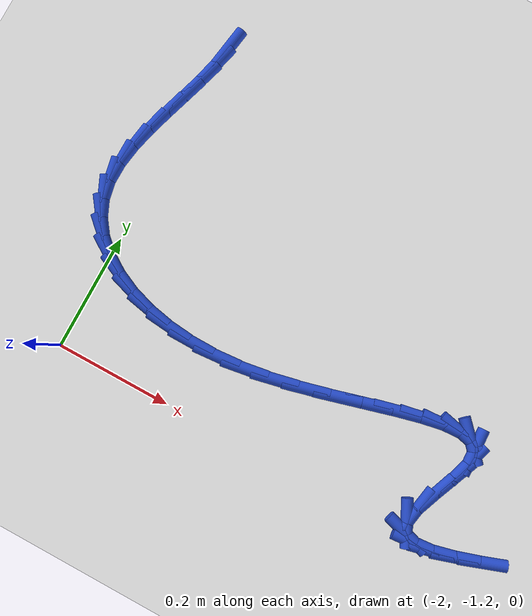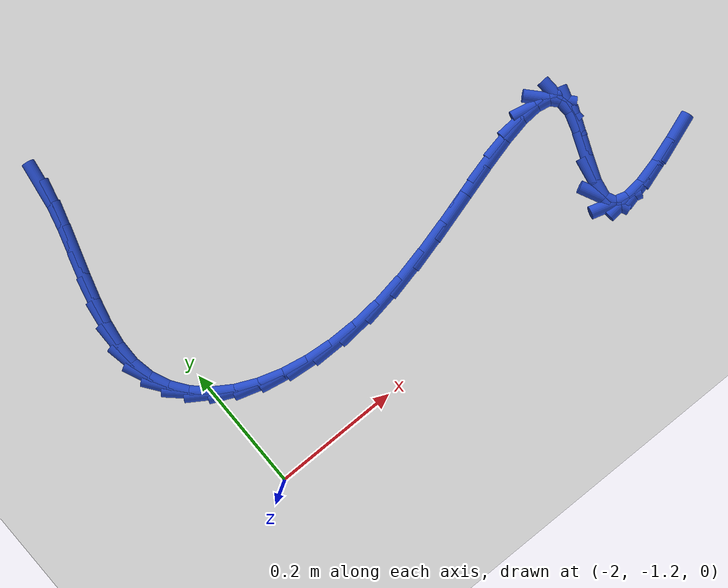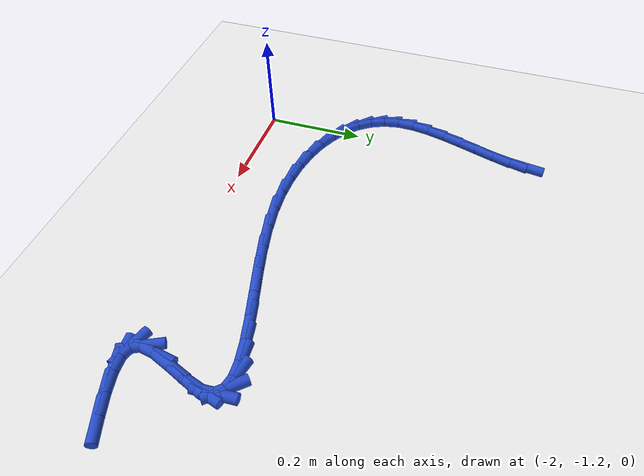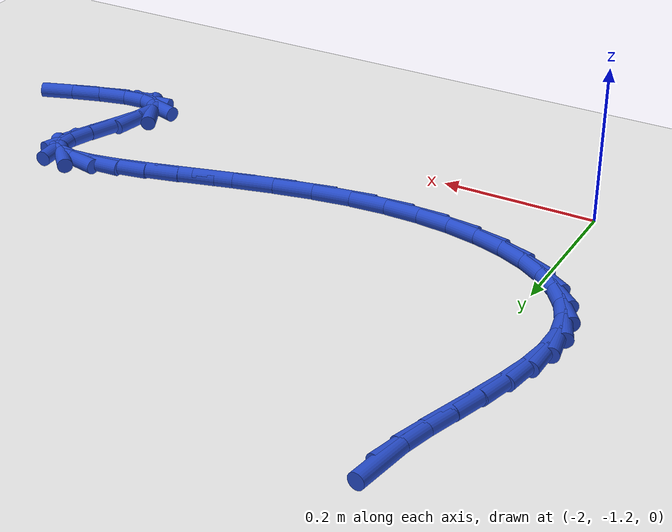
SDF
<sdf version="1.6">
 <world name="default">
  <model name="ground_plane">
   <static>1</static>
   <link name="link">
    <collision name="collision">
     <geometry><plane><normal>0 0 1</normal><size>100 100</size></plane></geometry>
     <surface><friction><ode><mu>100</mu><mu2>50</mu2></ode></friction></surface>
    </collision>
    <visual name="visual">
     <cast_shadows>0</cast_shadows>
     <geometry><plane><normal>0 0 1</normal><size>100 100</size></plane></geometry>
     <material>
      <script><uri>file://media/materials/scripts/gazebo.material</uri><name>Gazebo/WhiteGlow</name></script>
     </material>
    </visual>
   </link>
  </model>
  <model name="line">
   <link name="link_141">
    <pose>-1.998408107700239 -0.6361736279667485 0.01 0 1.57 1.4194632325536873</pose>
    <collision name="collision">
     <geometry><cylinder><radius>0.01</radius><length>0.08</length></cylinder></geometry>
    </collision>
    <visual name="visual">
     <material>
      <script><name>Gazebo/Blue</name><uri>file://media/materials/scripts/gazebo.material</uri></script>
     </material>
     <geometry><cylinder><radius>0.01</radius><length>0.08</length></cylinder></geometry>
    </visual>
   </link>
   <link name="link_142">
    <pose>-2.003416993031654 -0.6690189848262343 0.01 0 1.57 1.3237993009965494</pose>
    <collision name="collision">
     <geometry><cylinder><radius>0.01</radius><length>0.08</length></cylinder></geometry>
    </collision>
    <visual name="visual">
     <material>
      <script><name>Gazebo/Blue</name><uri>file://media/materials/scripts/gazebo.material</uri></script>
     </material>
     <geometry><cylinder><radius>0.01</radius><length>0.08</length></cylinder></geometry>
    </visual>
   </link>
   <link name="link_143">
    <pose>-2.0122755596257833 -0.7041517285194999 0.01 0 1.57 1.2746604182572225</pose>
    <collision name="collision">
     <geometry><cylinder><radius>0.01</radius><length>0.08</length></cylinder></geometry>
    </collision>
    <visual name="visual">
     <material>
      <script><name>Gazebo/Blue</name><uri>file://media/materials/scripts/gazebo.material</uri></script>
     </material>
     <geometry><cylinder><radius>0.01</radius><length>0.08</length></cylinder></geometry>
    </visual>
   </link>
   <link name="link_144">
    <pose>-2.023477470284653 -0.7408663711348178 0.01 0 1.57 1.2608573895504744</pose>
    <collision name="collision">
     <geometry><cylinder><radius>0.01</radius><length>0.08</length></cylinder></geometry>
    </collision>
    <visual name="visual">
     <material>
      <script><name>Gazebo/Blue</name><uri>file://media/materials/scripts/gazebo.material</uri></script>
     </material>
     <geometry><cylinder><radius>0.01</radius><length>0.08</length></cylinder></geometry>
    </visual>
   </link>
   <link name="link_145">
    <pose>-2.0355163878102913 -0.77845742476046 0.01 0 1.57 1.2783438722948446</pose>
    <collision name="collision">
     <geometry><cylinder><radius>0.01</radius><length>0.08</length></cylinder></geometry>
    </collision>
    <visual name="visual">
     <material>
      <script><name>Gazebo/Blue</name><uri>file://media/materials/scripts/gazebo.material</uri></script>
     </material>
     <geometry><cylinder><radius>0.01</radius><length>0.08</length></cylinder></geometry>
    </visual>
   </link>
   <link name="link_146">
    <pose>-2.0468859750047237 -0.8162194014846984 0.01 0 1.57 1.3286748542332683</pose>
    <collision name="collision">
     <geometry><cylinder><radius>0.01</radius><length>0.08</length></cylinder></geometry>
    </collision>
    <visual name="visual">
     <material>
      <script><name>Gazebo/Blue</name><uri>file://media/materials/scripts/gazebo.material</uri></script>
     </material>
     <geometry><cylinder><radius>0.01</radius><length>0.08</length></cylinder></geometry>
    </visual>
   </link>
   <link name="link_147">
    <pose>-2.0560798946699768 -0.8534468133958059 0.01 0 1.57 1.4188148855984966</pose>
    <collision name="collision">
     <geometry><cylinder><radius>0.01</radius><length>0.08</length></cylinder></geometry>
    </collision>
    <visual name="visual">
     <material>
      <script><name>Gazebo/Blue</name><uri>file://media/materials/scripts/gazebo.material</uri></script>
     </material>
     <geometry><cylinder><radius>0.01</radius><length>0.08</length></cylinder></geometry>
    </visual>
   </link>
   <link name="link_148">
    <pose>-2.061591809608077 -0.8894341725820526 0.01 0 1.57 1.5612914506586824</pose>
    <collision name="collision">
     <geometry><cylinder><radius>0.01</radius><length>0.08</length></cylinder></geometry>
    </collision>
    <visual name="visual">
     <material>
      <script><name>Gazebo/Blue</name><uri>file://media/materials/scripts/gazebo.material</uri></script>
     </material>
     <geometry><cylinder><radius>0.01</radius><length>0.08</length></cylinder></geometry>
    </visual>
   </link>
   <link name="link_149">
    <pose>-2.0619153826210517 -0.923475991131712 0.01 0 1.57 -1.37750091442947</pose>
    <collision name="collision">
     <geometry><cylinder><radius>0.01</radius><length>0.08</length></cylinder></geometry>
    </collision>
    <visual name="visual">
     <material>
      <script><name>Gazebo/Blue</name><uri>file://media/materials/scripts/gazebo.material</uri></script>
     </material>
     <geometry><cylinder><radius>0.01</radius><length>0.08</length></cylinder></geometry>
    </visual>
   </link>
   <link name="link_150">
    <pose>-2.055759117964963 -0.9549273355125546 0.01 0 1.57 -1.1544322432641454</pose>
    <collision name="collision">
     <geometry><cylinder><radius>0.01</radius><length>0.08</length></cylinder></geometry>
    </collision>
    <visual name="visual">
     <material>
      <script><name>Gazebo/Blue</name><uri>file://media/materials/scripts/gazebo.material</uri></script>
     </material>
     <geometry><cylinder><radius>0.01</radius><length>0.08</length></cylinder></geometry>
    </visual>
   </link>
   <link name="link_151">
    <pose>-2.043120807148904 -0.9835066657001553 0.01 0 1.57 -0.9406141104343997</pose>
    <collision name="collision">
     <geometry><cylinder><radius>0.01</radius><length>0.08</length></cylinder></geometry>
    </collision>
    <visual name="visual">
     <material>
      <script><name>Gazebo/Blue</name><uri>file://media/materials/scripts/gazebo.material</uri></script>
     </material>
     <geometry><cylinder><radius>0.01</radius><length>0.08</length></cylinder></geometry>
    </visual>
   </link>
   <link name="link_152">
    <pose>-2.024476981258225 -1.0090673773514356 0.01 0 1.57 -0.7472720955097159</pose>
    <collision name="collision">
     <geometry><cylinder><radius>0.01</radius><length>0.08</length></cylinder></geometry>
    </collision>
    <visual name="visual">
     <material>
      <script><name>Gazebo/Blue</name><uri>file://media/materials/scripts/gazebo.material</uri></script>
     </material>
     <geometry><cylinder><radius>0.01</radius><length>0.08</length></cylinder></geometry>
    </visual>
   </link>
   <link name="link_153">
    <pose>-2.0003049639254553 -1.031463089507593 0.01 0 1.57 -0.5785241795873693</pose>
    <collision name="collision">
     <geometry><cylinder><radius>0.01</radius><length>0.08</length></cylinder></geometry>
    </collision>
    <visual name="visual">
     <material>
      <script><name>Gazebo/Blue</name><uri>file://media/materials/scripts/gazebo.material</uri></script>
     </material>
     <geometry><cylinder><radius>0.01</radius><length>0.08</length></cylinder></geometry>
    </visual>
   </link>
   <link name="link_154">
    <pose>-1.9710820787831262 -1.0505474212098254 0.01 0 1.57 -0.4330958806955946</pose>
    <collision name="collision">
     <geometry><cylinder><radius>0.01</radius><length>0.08</length></cylinder></geometry>
    </collision>
    <visual name="visual">
     <material>
      <script><name>Gazebo/Blue</name><uri>file://media/materials/scripts/gazebo.material</uri></script>
     </material>
     <geometry><cylinder><radius>0.01</radius><length>0.08</length></cylinder></geometry>
    </visual>
   </link>
   <link name="link_155">
    <pose>-1.9372856494637676 -1.066173991499331 0.01 0 1.57 -0.3072300107531782</pose>
    <collision name="collision">
     <geometry><cylinder><radius>0.01</radius><length>0.08</length></cylinder></geometry>
    </collision>
    <visual name="visual">
     <material>
      <script><name>Gazebo/Blue</name><uri>file://media/materials/scripts/gazebo.material</uri></script>
     </material>
     <geometry><cylinder><radius>0.01</radius><length>0.08</length></cylinder></geometry>
    </visual>
   </link>
   <link name="link_156">
    <pose>-1.8993929995999128 -1.0781964194173073 0.01 0 1.57 -0.19669119035951352</pose>
    <collision name="collision">
     <geometry><cylinder><radius>0.01</radius><length>0.08</length></cylinder></geometry>
    </collision>
    <visual name="visual">
     <material>
      <script><name>Gazebo/Blue</name><uri>file://media/materials/scripts/gazebo.material</uri></script>
     </material>
     <geometry><cylinder><radius>0.01</radius><length>0.08</length></cylinder></geometry>
    </visual>
   </link>
   <link name="link_157">
    <pose>-1.8578814528240915 -1.0864683240049526 0.01 0 1.57 -0.09766576173297506</pose>
    <collision name="collision">
     <geometry><cylinder><radius>0.01</radius><length>0.08</length></cylinder></geometry>
    </collision>
    <visual name="visual">
     <material>
      <script><name>Gazebo/Blue</name><uri>file://media/materials/scripts/gazebo.material</uri></script>
     </material>
     <geometry><cylinder><radius>0.01</radius><length>0.08</length></cylinder></geometry>
    </visual>
   </link>
   <link name="link_158">
    <pose>-1.8132283327688343 -1.090843324303465 0.01 0 1.57 -0.007010313943005772</pose>
    <collision name="collision">
     <geometry><cylinder><radius>0.01</radius><length>0.08</length></cylinder></geometry>
    </collision>
    <visual name="visual">
     <material>
      <script><name>Gazebo/Blue</name><uri>file://media/materials/scripts/gazebo.material</uri></script>
     </material>
     <geometry><cylinder><radius>0.01</radius><length>0.08</length></cylinder></geometry>
    </visual>
   </link>
   <link name="link_159">
    <pose>-1.7659109630666734 -1.0911750393540425 0.01 0 1.57 0.07777444805898516</pose>
    <collision name="collision">
     <geometry><cylinder><radius>0.01</radius><length>0.08</length></cylinder></geometry>
    </collision>
    <visual name="visual">
     <material>
      <script><name>Gazebo/Blue</name><uri>file://media/materials/scripts/gazebo.material</uri></script>
     </material>
     <geometry><cylinder><radius>0.01</radius><length>0.08</length></cylinder></geometry>
    </visual>
   </link>
   <link name="link_160">
    <pose>-1.7164066673501386 -1.0873170881978829 0.01 0 1.57 0.15617996272577872</pose>
    <collision name="collision">
     <geometry><cylinder><radius>0.01</radius><length>0.08</length></cylinder></geometry>
    </collision>
    <visual name="visual">
     <material>
      <script><name>Gazebo/Blue</name><uri>file://media/materials/scripts/gazebo.material</uri></script>
     </material>
     <geometry><cylinder><radius>0.01</radius><length>0.08</length></cylinder></geometry>
    </visual>
   </link>
   <link name="link_161">
    <pose>-1.6652636193483126 -1.0792639845566872 0.01 0 1.57 0.2146367477468952</pose>
    <collision name="collision">
     <geometry><cylinder><radius>0.01</radius><length>0.08</length></cylinder></geometry>
    </collision>
    <visual name="visual">
     <material>
      <script><name>Gazebo/Blue</name><uri>file://media/materials/scripts/gazebo.material</uri></script>
     </material>
     <geometry><cylinder><radius>0.01</radius><length>0.08</length></cylinder></geometry>
    </visual>
   </link>
   <link name="link_162">
    <pose>-1.613519698334832 -1.0679840856555534 0.01 0 1.57 0.2514497727113362</pose>
    <collision name="collision">
     <geometry><cylinder><radius>0.01</radius><length>0.08</length></cylinder></geometry>
    </collision>
    <visual name="visual">
     <material>
      <script><name>Gazebo/Blue</name><uri>file://media/materials/scripts/gazebo.material</uri></script>
     </material>
     <geometry><cylinder><radius>0.01</radius><length>0.08</length></cylinder></geometry>
    </visual>
   </link>
   <link name="link_163">
    <pose>-1.562419666494411 -1.0548571624377818 0.01 0 1.57 0.26949539332802847</pose>
    <collision name="collision">
     <geometry><cylinder><radius>0.01</radius><length>0.08</length></cylinder></geometry>
    </collision>
    <visual name="visual">
     <material>
      <script><name>Gazebo/Blue</name><uri>file://media/materials/scripts/gazebo.material</uri></script>
     </material>
     <geometry><cylinder><radius>0.01</radius><length>0.08</length></cylinder></geometry>
    </visual>
   </link>
   <link name="link_164">
    <pose>-1.5132090202748156 -1.0412644460247678 0.01 0 1.57 0.26849621662102297</pose>
    <collision name="collision">
     <geometry><cylinder><radius>0.01</radius><length>0.08</length></cylinder></geometry>
    </collision>
    <visual name="visual">
     <material>
      <script><name>Gazebo/Blue</name><uri>file://media/materials/scripts/gazebo.material</uri></script>
     </material>
     <geometry><cylinder><radius>0.01</radius><length>0.08</length></cylinder></geometry>
    </visual>
   </link>
   <link name="link_165">
    <pose>-1.4671332561238168 -1.0285871675379086 0.01 0 1.57 0.2440024511056861</pose>
    <collision name="collision">
     <geometry><cylinder><radius>0.01</radius><length>0.08</length></cylinder></geometry>
    </collision>
    <visual name="visual">
     <material>
      <script><name>Gazebo/Blue</name><uri>file://media/materials/scripts/gazebo.material</uri></script>
     </material>
     <geometry><cylinder><radius>0.01</radius><length>0.08</length></cylinder></geometry>
    </visual>
   </link>
   <link name="link_166">
    <pose>-1.425437870489182 -1.0182065580985993 0.01 0 1.57 0.183731824676864</pose>
    <collision name="collision">
     <geometry><cylinder><radius>0.01</radius><length>0.08</length></cylinder></geometry>
    </collision>
    <visual name="visual">
     <material>
      <script><name>Gazebo/Blue</name><uri>file://media/materials/scripts/gazebo.material</uri></script>
     </material>
     <geometry><cylinder><radius>0.01</radius><length>0.08</length></cylinder></geometry>
    </visual>
   </link>
   <link name="link_167">
    <pose>-1.3893683598186808 -1.0115038488282364 0.01 0 1.57 0.05623116253719144</pose>
    <collision name="collision">
     <geometry><cylinder><radius>0.01</radius><length>0.08</length></cylinder></geometry>
    </collision>
    <visual name="visual">
     <material>
      <script><name>Gazebo/Blue</name><uri>file://media/materials/scripts/gazebo.material</uri></script>
     </material>
     <geometry><cylinder><radius>0.01</radius><length>0.08</length></cylinder></geometry>
    </visual>
   </link>
   <link name="link_168">
    <pose>-1.360170220560083 -1.0098602708482165 0.01 0 1.57 -0.22372856420444484</pose>
    <collision name="collision">
     <geometry><cylinder><radius>0.01</radius><length>0.08</length></cylinder></geometry>
    </collision>
    <visual name="visual">
     <material>
      <script><name>Gazebo/Blue</name><uri>file://media/materials/scripts/gazebo.material</uri></script>
     </material>
     <geometry><cylinder><radius>0.01</radius><length>0.08</length></cylinder></geometry>
    </visual>
   </link>
   <link name="link_169">
    <pose>-1.3390889491611568 -1.0146570552799354 0.01 0 1.57 -0.8223399039037487</pose>
    <collision name="collision">
     <geometry><cylinder><radius>0.01</radius><length>0.08</length></cylinder></geometry>
    </collision>
    <visual name="visual">
     <material>
      <script><name>Gazebo/Blue</name><uri>file://media/materials/scripts/gazebo.material</uri></script>
     </material>
     <geometry><cylinder><radius>0.01</radius><length>0.08</length></cylinder></geometry>
    </visual>
   </link>
   <link name="link_170">
    <pose>-1.3273700420696717 -1.0272754332447895 0.01 0 1.57 -1.5199243495201655</pose>
    <collision name="collision">
     <geometry><cylinder><radius>0.01</radius><length>0.08</length></cylinder></geometry>
    </collision>
    <visual name="visual">
     <material>
      <script><name>Gazebo/Blue</name><uri>file://media/materials/scripts/gazebo.material</uri></script>
     </material>
     <geometry><cylinder><radius>0.01</radius><length>0.08</length></cylinder></geometry>
    </visual>
   </link>
   <link name="link_171">
    <pose>-1.3262589957333974 -1.0490966358641751 0.01 0 1.57 1.2731330230850266</pose>
    <collision name="collision">
     <geometry><cylinder><radius>0.01</radius><length>0.08</length></cylinder></geometry>
    </collision>
    <visual name="visual">
     <material>
      <script><name>Gazebo/Blue</name><uri>file://media/materials/scripts/gazebo.material</uri></script>
     </material>
     <geometry><cylinder><radius>0.01</radius><length>0.08</length></cylinder></geometry>
    </visual>
   </link>
   <link name="link_172">
    <pose>-1.3358823859786981 -1.0804658880764815 0.01 0 1.57 1.1776292897777563</pose>
    <collision name="collision">
     <geometry><cylinder><radius>0.01</radius><length>0.08</length></cylinder></geometry>
    </collision>
    <visual name="visual">
     <material>
      <script><name>Gazebo/Blue</name><uri>file://media/materials/scripts/gazebo.material</uri></script>
     </material>
     <geometry><cylinder><radius>0.01</radius><length>0.08</length></cylinder></geometry>
    </visual>
   </link>
   <link name="link_173">
    <pose>-1.350895316651382 -1.1166623907487139 0.01 0 1.57 1.203128393020451</pose>
    <collision name="collision">
     <geometry><cylinder><radius>0.01</radius><length>0.08</length></cylinder></geometry>
    </collision>
    <visual name="visual">
     <material>
      <script><name>Gazebo/Blue</name><uri>file://media/materials/scripts/gazebo.material</uri></script>
     </material>
     <geometry><cylinder><radius>0.01</radius><length>0.08</length></cylinder></geometry>
    </visual>
   </link>
   <link name="link_174">
    <pose>-1.364283056090072 -1.1514192476638168 0.01 0 1.57 1.3961051197324468</pose>
    <collision name="collision">
     <geometry><cylinder><radius>0.01</radius><length>0.08</length></cylinder></geometry>
    </collision>
    <visual name="visual">
     <material>
      <script><name>Gazebo/Blue</name><uri>file://media/materials/scripts/gazebo.material</uri></script>
     </material>
     <geometry><cylinder><radius>0.01</radius><length>0.08</length></cylinder></geometry>
    </visual>
   </link>
   <link name="link_175">
    <pose>-1.3690621984328657 -1.1784980467108623 0.01 0 1.57 -1.1097661804679573</pose>
    <collision name="collision">
     <geometry><cylinder><radius>0.01</radius><length>0.08</length></cylinder></geometry>
    </collision>
    <visual name="visual">
     <material>
      <script><name>Gazebo/Blue</name><uri>file://media/materials/scripts/gazebo.material</uri></script>
     </material>
     <geometry><cylinder><radius>0.01</radius><length>0.08</length></cylinder></geometry>
    </visual>
   </link>
   <link name="link_176">
    <pose>-1.3611937986654388 -1.1943383646064838 0.01 0 1.57 -0.2949889833550326</pose>
    <collision name="collision">
     <geometry><cylinder><radius>0.01</radius><length>0.08</length></cylinder></geometry>
    </collision>
    <visual name="visual">
     <material>
      <script><name>Gazebo/Blue</name><uri>file://media/materials/scripts/gazebo.material</uri></script>
     </material>
     <geometry><cylinder><radius>0.01</radius><length>0.08</length></cylinder></geometry>
    </visual>
   </link>
   <link name="link_177">
    <pose>-1.3419297730501625 -1.200191819429258 0.01 0 1.57 0.08227966260887404</pose>
    <collision name="collision">
     <geometry><cylinder><radius>0.01</radius><length>0.08</length></cylinder></geometry>
    </collision>
    <visual name="visual">
     <material>
      <script><name>Gazebo/Blue</name><uri>file://media/materials/scripts/gazebo.material</uri></script>
     </material>
     <geometry><cylinder><radius>0.01</radius><length>0.08</length></cylinder></geometry>
    </visual>
   </link>
   <link name="link_178">
    <pose>-1.3130741990596875 -1.1978122201948065 0.01 0 1.57 0.2372090206347851</pose>
    <collision name="collision">
     <geometry><cylinder><radius>0.01</radius><length>0.08</length></cylinder></geometry>
    </collision>
    <visual name="visual">
     <material>
      <script><name>Gazebo/Blue</name><uri>file://media/materials/scripts/gazebo.material</uri></script>
     </material>
     <geometry><cylinder><radius>0.01</radius><length>0.08</length></cylinder></geometry>
    </visual>
   </link>
   <link name="link_179">
    <pose>-1.2764311541666633 -1.1889533759187525 0.01 0 1.57 0.3085069501089626</pose>
    <collision name="collision">
     <geometry><cylinder><radius>0.01</radius><length>0.08</length></cylinder></geometry>
    </collision>
    <visual name="visual">
     <material>
      <script><name>Gazebo/Blue</name><uri>file://media/materials/scripts/gazebo.material</uri></script>
     </material>
     <geometry><cylinder><radius>0.01</radius><length>0.08</length></cylinder></geometry>
    </visual>
   </link>
   <link name="link_180">
    <pose>-1.23380471584374 -1.1753690956167173 0.01 0 1.57 0.3399807436615331</pose>
    <collision name="collision">
     <geometry><cylinder><radius>0.01</radius><length>0.08</length></cylinder></geometry>
    </collision>
    <visual name="visual">
     <material>
      <script><name>Gazebo/Blue</name><uri>file://media/materials/scripts/gazebo.material</uri></script>
     </material>
     <geometry><cylinder><radius>0.01</radius><length>0.08</length></cylinder></geometry>
    </visual>
   </link>
  </model>
 </world>
</sdf>
